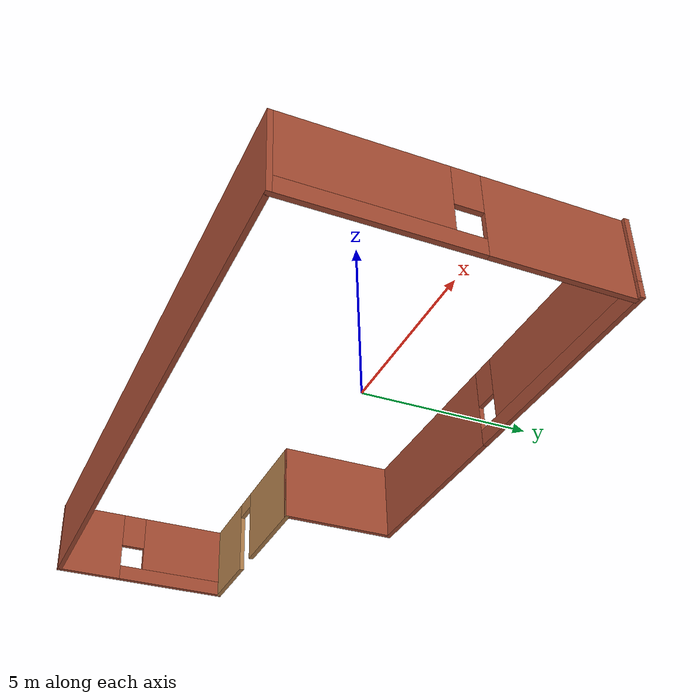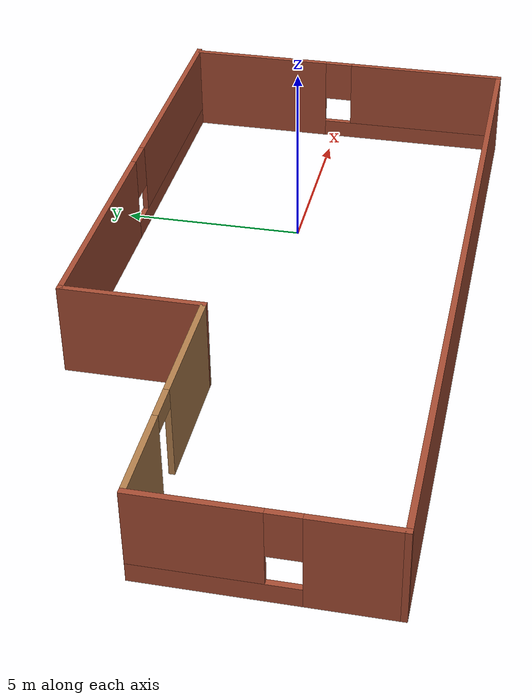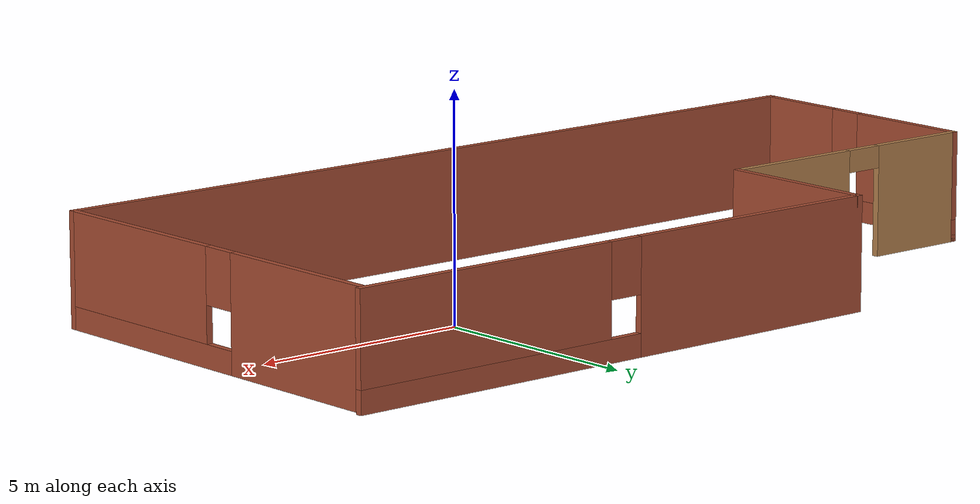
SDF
<?xml version='1.0'?>
<sdf version='1.7'>
  <model name='obstcales.world'>
    <pose>-3.89255 -0.305925 0 0 -0 0</pose>
    <link name='Wall_18'>
      <pose>9.875 -0.05 0 0 -0 -1.5708</pose>
      <visual name='Wall_18_Visual_0'>
        <pose>-2.70706 0 1.25 0 -0 0</pose>
        <geometry>
          <box>
            <size>4.08587 0.15 2.5</size>
          </box>
        </geometry>
        <material>
          <script>
            <uri>file://media/materials/scripts/gazebo.material</uri>
            <name>Gazebo/Bricks</name>
          </script>
          <ambient>1 1 1 1</ambient>
        </material>
        <meta>
          <layer>0</layer>
        </meta>
      </visual>
      <collision name='Wall_18_Collision_0'>
        <geometry>
          <box>
            <size>4.08587 0.15 2.5</size>
          </box>
        </geometry>
        <pose>-2.70706 0 1.25 0 -0 0</pose>
      </collision>
      <visual name='Wall_18_Visual_1'>
        <pose>2.04294 0 0.25 0 -0 0</pose>
        <geometry>
          <box>
            <size>5.41413 0.15 0.5</size>
          </box>
        </geometry>
        <material>
          <script>
            <uri>file://media/materials/scripts/gazebo.material</uri>
            <name>Gazebo/Bricks</name>
          </script>
          <ambient>1 1 1 1</ambient>
        </material>
        <meta>
          <layer>0</layer>
        </meta>
      </visual>
      <collision name='Wall_18_Collision_1'>
        <geometry>
          <box>
            <size>5.41413 0.15 0.5</size>
          </box>
        </geometry>
        <pose>2.04294 0 0.25 0 -0 0</pose>
      </collision>
      <visual name='Wall_18_Visual_2'>
        <pose>2.44294 0 1.5 0 -0 0</pose>
        <geometry>
          <box>
            <size>4.61413 0.15 2</size>
          </box>
        </geometry>
        <material>
          <script>
            <uri>file://media/materials/scripts/gazebo.material</uri>
            <name>Gazebo/Bricks</name>
          </script>
          <ambient>1 1 1 1</ambient>
        </material>
        <meta>
          <layer>0</layer>
        </meta>
      </visual>
      <collision name='Wall_18_Collision_2'>
        <geometry>
          <box>
            <size>4.61413 0.15 2</size>
          </box>
        </geometry>
        <pose>2.44294 0 1.5 0 -0 0</pose>
      </collision>
      <visual name='Wall_18_Visual_3'>
        <pose>-0.264128 0 1.9 0 -0 0</pose>
        <geometry>
          <box>
            <size>0.8 0.15 1.2</size>
          </box>
        </geometry>
        <material>
          <script>
            <uri>file://media/materials/scripts/gazebo.material</uri>
            <name>Gazebo/Bricks</name>
          </script>
          <ambient>1 1 1 1</ambient>
        </material>
        <meta>
          <layer>0</layer>
        </meta>
      </visual>
      <collision name='Wall_18_Collision_3'>
        <geometry>
          <box>
            <size>0.8 0.15 1.2</size>
          </box>
        </geometry>
        <pose>-0.264128 0 1.9 0 -0 0</pose>
      </collision>
    </link>
    <link name='Wall_19'>
      <collision name='Wall_19_Collision'>
        <geometry>
          <box>
            <size>20 0.15 2.5</size>
          </box>
        </geometry>
        <pose>0 0 1.25 0 -0 0</pose>
      </collision>
      <visual name='Wall_19_Visual'>
        <pose>0 0 1.25 0 -0 0</pose>
        <geometry>
          <box>
            <size>20 0.15 2.5</size>
          </box>
        </geometry>
        <material>
          <script>
            <uri>file://media/materials/scripts/gazebo.material</uri>
            <name>Gazebo/Bricks</name>
          </script>
          <ambient>1 1 1 1</ambient>
        </material>
        <meta>
          <layer>0</layer>
        </meta>
      </visual>
      <pose>-0.05 -4.725 0 0 -0 3.14159</pose>
    </link>
    <link name='Wall_20'>
      <pose>-9.975 -1.8 0 0 -0 1.5708</pose>
      <visual name='Wall_20_Visual_0'>
        <pose>-1.9075 0 1.25 0 -0 0</pose>
        <geometry>
          <box>
            <size>2.185 0.15 2.5</size>
          </box>
        </geometry>
        <material>
          <script>
            <uri>file://media/materials/scripts/gazebo.material</uri>
            <name>Gazebo/Bricks</name>
          </script>
          <ambient>1 1 1 1</ambient>
        </material>
        <meta>
          <layer>0</layer>
        </meta>
      </visual>
      <collision name='Wall_20_Collision_0'>
        <geometry>
          <box>
            <size>2.185 0.15 2.5</size>
          </box>
        </geometry>
        <pose>-1.9075 0 1.25 0 -0 0</pose>
      </collision>
      <visual name='Wall_20_Visual_1'>
        <pose>1.0925 0 0.25 0 -0 0</pose>
        <geometry>
          <box>
            <size>3.815 0.15 0.5</size>
          </box>
        </geometry>
        <material>
          <script>
            <uri>file://media/materials/scripts/gazebo.material</uri>
            <name>Gazebo/Bricks</name>
          </script>
          <ambient>1 1 1 1</ambient>
        </material>
        <meta>
          <layer>0</layer>
        </meta>
      </visual>
      <collision name='Wall_20_Collision_1'>
        <geometry>
          <box>
            <size>3.815 0.15 0.5</size>
          </box>
        </geometry>
        <pose>1.0925 0 0.25 0 -0 0</pose>
      </collision>
      <visual name='Wall_20_Visual_2'>
        <pose>1.4925 0 1.5 0 -0 0</pose>
        <geometry>
          <box>
            <size>3.015 0.15 2</size>
          </box>
        </geometry>
        <material>
          <script>
            <uri>file://media/materials/scripts/gazebo.material</uri>
            <name>Gazebo/Bricks</name>
          </script>
          <ambient>1 1 1 1</ambient>
        </material>
        <meta>
          <layer>0</layer>
        </meta>
      </visual>
      <collision name='Wall_20_Collision_2'>
        <geometry>
          <box>
            <size>3.015 0.15 2</size>
          </box>
        </geometry>
        <pose>1.4925 0 1.5 0 -0 0</pose>
      </collision>
      <visual name='Wall_20_Visual_3'>
        <pose>-0.415 0 1.9 0 -0 0</pose>
        <geometry>
          <box>
            <size>0.8 0.15 1.2</size>
          </box>
        </geometry>
        <material>
          <script>
            <uri>file://media/materials/scripts/gazebo.material</uri>
            <name>Gazebo/Bricks</name>
          </script>
          <ambient>1 1 1 1</ambient>
        </material>
        <meta>
          <layer>0</layer>
        </meta>
      </visual>
      <collision name='Wall_20_Collision_3'>
        <geometry>
          <box>
            <size>0.8 0.15 1.2</size>
          </box>
        </geometry>
        <pose>-0.415 0 1.9 0 -0 0</pose>
      </collision>
    </link>
    <link name='Wall_21'>
      <pose>-6.675 1.125 0 0 -0 0</pose>
      <visual name='Wall_21_Visual_0'>
        <pose>-2.13376 0 1.25 0 -0 0</pose>
        <geometry>
          <box>
            <size>2.48248 0.15 2.5</size>
          </box>
        </geometry>
        <material>
          <script>
            <uri>file://media/materials/scripts/gazebo.material</uri>
            <name>Gazebo/Wood</name>
          </script>
          <ambient>1 1 1 1</ambient>
        </material>
        <meta>
          <layer>0</layer>
        </meta>
      </visual>
      <collision name='Wall_21_Collision_0'>
        <geometry>
          <box>
            <size>2.48248 0.15 2.5</size>
          </box>
        </geometry>
        <pose>-2.13376 0 1.25 0 -0 0</pose>
      </collision>
      <visual name='Wall_21_Visual_1'>
        <pose>1.69124 0 1.25 0 -0 0</pose>
        <geometry>
          <box>
            <size>3.36752 0.15 2.5</size>
          </box>
        </geometry>
        <material>
          <script>
            <uri>file://media/materials/scripts/gazebo.material</uri>
            <name>Gazebo/Wood</name>
          </script>
          <ambient>1 1 1 1</ambient>
        </material>
        <meta>
          <layer>0</layer>
        </meta>
      </visual>
      <collision name='Wall_21_Collision_1'>
        <geometry>
          <box>
            <size>3.36752 0.15 2.5</size>
          </box>
        </geometry>
        <pose>1.69124 0 1.25 0 -0 0</pose>
      </collision>
      <visual name='Wall_21_Visual_2'>
        <pose>-0.442523 0 2.25 0 -0 0</pose>
        <geometry>
          <box>
            <size>0.9 0.15 0.5</size>
          </box>
        </geometry>
        <material>
          <script>
            <uri>file://media/materials/scripts/gazebo.material</uri>
            <name>Gazebo/Wood</name>
          </script>
          <ambient>1 1 1 1</ambient>
        </material>
        <meta>
          <layer>0</layer>
        </meta>
      </visual>
      <collision name='Wall_21_Collision_2'>
        <geometry>
          <box>
            <size>0.9 0.15 0.5</size>
          </box>
        </geometry>
        <pose>-0.442523 0 2.25 0 -0 0</pose>
      </collision>
    </link>
    <link name='Wall_22'>
      <collision name='Wall_22_Collision'>
        <geometry>
          <box>
            <size>3.75 0.15 2.5</size>
          </box>
        </geometry>
        <pose>0 0 1.25 0 -0 0</pose>
      </collision>
      <visual name='Wall_22_Visual'>
        <pose>0 0 1.25 0 -0 0</pose>
        <geometry>
          <box>
            <size>3.75 0.15 2.5</size>
          </box>
        </geometry>
        <material>
          <script>
            <uri>file://media/materials/scripts/gazebo.material</uri>
            <name>Gazebo/Bricks</name>
          </script>
          <ambient>1 1 1 1</ambient>
        </material>
        <meta>
          <layer>0</layer>
        </meta>
      </visual>
      <pose>-3.375 2.925 0 0 -0 1.5708</pose>
    </link>
    <link name='Wall_23'>
      <pose>3.3 4.725 0 0 -0 0</pose>
      <visual name='Wall_23_Visual_0'>
        <pose>-3.6275 0 1.25 0 -0 0</pose>
        <geometry>
          <box>
            <size>6.245 0.15 2.5</size>
          </box>
        </geometry>
        <material>
          <script>
            <uri>file://media/materials/scripts/gazebo.material</uri>
            <name>Gazebo/Bricks</name>
          </script>
          <ambient>0.921569 0.807843 0.615686 1</ambient>
        </material>
        <meta>
          <layer>0</layer>
        </meta>
      </visual>
      <collision name='Wall_23_Collision_0'>
        <geometry>
          <box>
            <size>6.245 0.15 2.5</size>
          </box>
        </geometry>
        <pose>-3.6275 0 1.25 0 -0 0</pose>
      </collision>
      <visual name='Wall_23_Visual_1'>
        <pose>3.1225 0 0.25 0 -0 0</pose>
        <geometry>
          <box>
            <size>7.255 0.15 0.5</size>
          </box>
        </geometry>
        <material>
          <script>
            <uri>file://media/materials/scripts/gazebo.material</uri>
            <name>Gazebo/Bricks</name>
          </script>
          <ambient>0.921569 0.807843 0.615686 1</ambient>
        </material>
        <meta>
          <layer>0</layer>
        </meta>
      </visual>
      <collision name='Wall_23_Collision_1'>
        <geometry>
          <box>
            <size>7.255 0.15 0.5</size>
          </box>
        </geometry>
        <pose>3.1225 0 0.25 0 -0 0</pose>
      </collision>
      <visual name='Wall_23_Visual_2'>
        <pose>3.5225 0 1.5 0 -0 0</pose>
        <geometry>
          <box>
            <size>6.455 0.15 2</size>
          </box>
        </geometry>
        <material>
          <script>
            <uri>file://media/materials/scripts/gazebo.material</uri>
            <name>Gazebo/Bricks</name>
          </script>
          <ambient>0.921569 0.807843 0.615686 1</ambient>
        </material>
        <meta>
          <layer>0</layer>
        </meta>
      </visual>
      <collision name='Wall_23_Collision_2'>
        <geometry>
          <box>
            <size>6.455 0.15 2</size>
          </box>
        </geometry>
        <pose>3.5225 0 1.5 0 -0 0</pose>
      </collision>
      <visual name='Wall_23_Visual_3'>
        <pose>-0.105 0 1.9 0 -0 0</pose>
        <geometry>
          <box>
            <size>0.8 0.15 1.2</size>
          </box>
        </geometry>
        <material>
          <script>
            <uri>file://media/materials/scripts/gazebo.material</uri>
            <name>Gazebo/Bricks</name>
          </script>
          <ambient>0.921569 0.807843 0.615686 1</ambient>
        </material>
        <meta>
          <layer>0</layer>
        </meta>
      </visual>
      <collision name='Wall_23_Collision_3'>
        <geometry>
          <box>
            <size>0.8 0.15 1.2</size>
          </box>
        </geometry>
        <pose>-0.105 0 1.9 0 -0 0</pose>
      </collision>
    </link>
    <static>1</static>
  </model>
</sdf>
